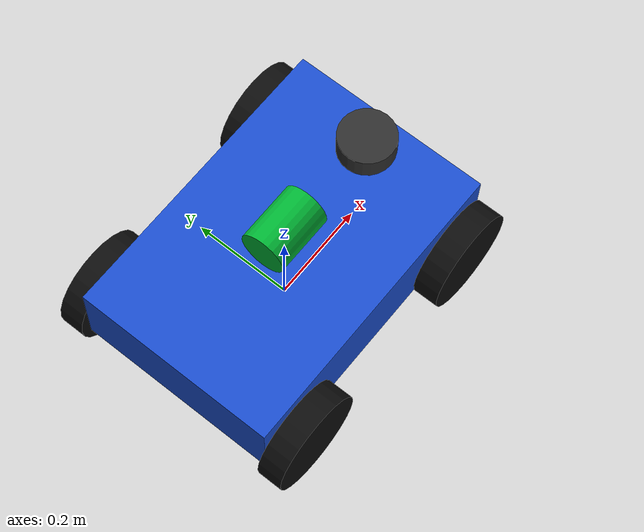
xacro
<?xml version="1.0"?>
<robot xmlns:xacro="http://www.ros.org/wiki/xacro" name="robot_model">

  <!-- ────────────────────────────────────────────────────────────────
       DIMENSIONS
  ──────────────────────────────────────────────────────────────────── -->
  <xacro:property name="base_length"     value="0.60"/>
  <xacro:property name="base_width"      value="0.40"/>
  <xacro:property name="base_height"     value="0.15"/>
  <xacro:property name="base_z"          value="0.15"/>

  <xacro:property name="wheel_radius"    value="0.10"/>
  <xacro:property name="wheel_width"     value="0.05"/>
  <xacro:property name="wheel_x_offset"  value="0.22"/>
  <xacro:property name="wheel_y_offset"  value="0.225"/>
  <xacro:property name="wheel_z"         value="0.10"/>

  <xacro:property name="sensor_base_z"   value="${base_z + base_height / 2.0}"/>

  <xacro:property name="lidar_radius"    value="0.055"/>
  <xacro:property name="lidar_height"    value="0.045"/>
  <xacro:property name="lidar_x"         value="${base_length / 2.0 - 0.07}"/>
  <xacro:property name="lidar_z"         value="${sensor_base_z + lidar_height / 2.0}"/>

  <xacro:property name="camera_radius"   value="0.045"/>
  <xacro:property name="camera_length"   value="0.12"/>
  <xacro:property name="camera_z"        value="${sensor_base_z + camera_radius}"/>

  <!-- ────────────────────────────────────────────────────────────────
       MASS PROPERTIES
  ──────────────────────────────────────────────────────────────────── -->
  <xacro:property name="base_mass"       value="12.0"/>
  <xacro:property name="wheel_mass"      value="1.0"/>
  <xacro:property name="lidar_mass"      value="0.25"/>
  <xacro:property name="camera_mass"     value="0.20"/>

  <!-- ────────────────────────────────────────────────────────────────
       MATERIALS  (URDF / RViz)
  ──────────────────────────────────────────────────────────────────── -->
  <material name="blue">
    <color rgba="0.1 0.3 0.8 1.0"/>
  </material>
  <material name="black">
    <color rgba="0.05 0.05 0.05 1.0"/>
  </material>
  <material name="dark_gray">
    <color rgba="0.18 0.18 0.18 1.0"/>
  </material>
  <material name="green">
    <color rgba="0.0 0.7 0.2 1.0"/>
  </material>

  <gazebo reference="base_link">
    <material>
      <ambient>0.1 0.3 0.8 1</ambient>
      <diffuse>0.1 0.3 0.8 1</diffuse>
      <specular>0.1 0.1 0.1 1</specular>
    </material>
  </gazebo>

  <gazebo reference="front_left_wheel_link">
    <material>
      <ambient>0.05 0.05 0.05 1</ambient>
      <diffuse>0.05 0.05 0.05 1</diffuse>
    </material>
  </gazebo>
  <gazebo reference="front_right_wheel_link">
    <material>
      <ambient>0.05 0.05 0.05 1</ambient>
      <diffuse>0.05 0.05 0.05 1</diffuse>
    </material>
  </gazebo>
  <gazebo reference="rear_left_wheel_link">
    <material>
      <ambient>0.05 0.05 0.05 1</ambient>
      <diffuse>0.05 0.05 0.05 1</diffuse>
    </material>
  </gazebo>
  <gazebo reference="rear_right_wheel_link">
    <material>
      <ambient>0.05 0.05 0.05 1</ambient>
      <diffuse>0.05 0.05 0.05 1</diffuse>
    </material>
  </gazebo>

  <!-- ────────────────────────────────────────────────────────────────
       BASE FOOTPRINT
  ──────────────────────────────────────────────────────────────────── -->
  <link name="base_footprint"/>

  <joint name="base_footprint_joint" type="fixed">
    <parent link="base_footprint"/>
    <child  link="base_link"/>
    <origin xyz="0 0 0" rpy="0 0 0"/>
  </joint>

  <!-- ────────────────────────────────────────────────────────────────
       BASE LINK
  ──────────────────────────────────────────────────────────────────── -->
  <link name="base_link">
    <visual>
      <origin xyz="0 0 ${base_z}" rpy="0 0 0"/>
      <geometry>
        <box size="${base_length} ${base_width} ${base_height}"/>
      </geometry>
      <material name="blue"/>
    </visual>
    <collision>
      <origin xyz="0 0 ${base_z}" rpy="0 0 0"/>
      <geometry>
        <box size="${base_length} ${base_width} ${base_height}"/>
      </geometry>
    </collision>
    <inertial>
      <origin xyz="0 0 ${base_z}" rpy="0 0 0"/>
      <mass value="${base_mass}"/>
      <inertia
        ixx="${(base_mass/12.0)*(base_width*base_width  + base_height*base_height)}"
        ixy="0" ixz="0"
        iyy="${(base_mass/12.0)*(base_length*base_length + base_height*base_height)}"
        iyz="0"
        izz="${(base_mass/12.0)*(base_length*base_length + base_width*base_width)}"/>
    </inertial>
  </link>

  <!-- ────────────────────────────────────────────────────────────────
       WHEEL MACRO
  ──────────────────────────────────────────────────────────────────── -->
  <xacro:macro name="wheel" params="prefix x y">
    <link name="${prefix}_wheel_link">
      <visual>
        <origin xyz="0 0 0" rpy="${pi/2.0} 0 0"/>
        <geometry>
          <cylinder radius="${wheel_radius}" length="${wheel_width}"/>
        </geometry>
        <material name="black"/>
      </visual>
      <collision>
        <origin xyz="0 0 0" rpy="${pi/2.0} 0 0"/>
        <geometry>
          <cylinder radius="${wheel_radius}" length="${wheel_width}"/>
        </geometry>
        <!-- Gz Harmonic: improve wheel-ground contact -->
        <surface>
          <friction>
            <ode>
              <mu>1.0</mu>
              <mu2>1.0</mu2>
            </ode>
          </friction>
        </surface>
      </collision>
      <inertial>
        <mass value="${wheel_mass}"/>
        <inertia
          ixx="${(wheel_mass/12.0)*(3.0*wheel_radius*wheel_radius + wheel_width*wheel_width)}"
          ixy="0" ixz="0"
          iyy="${0.5*wheel_mass*wheel_radius*wheel_radius}"
          iyz="0"
          izz="${(wheel_mass/12.0)*(3.0*wheel_radius*wheel_radius + wheel_width*wheel_width)}"/>
      </inertial>
    </link>

    <joint name="${prefix}_wheel_joint" type="continuous">
      <parent link="base_link"/>
      <child  link="${prefix}_wheel_link"/>
      <origin xyz="${x} ${y} ${wheel_z}" rpy="0 0 0"/>
      <axis xyz="0 1 0"/>
      <dynamics damping="0.1" friction="0.1"/>
    </joint>
  </xacro:macro>

  <!-- Four-wheel placement -->
  <xacro:wheel prefix="front_left"  x="${wheel_x_offset}"  y="${wheel_y_offset}"/>
  <xacro:wheel prefix="front_right" x="${wheel_x_offset}"  y="${-wheel_y_offset}"/>
  <xacro:wheel prefix="rear_left"   x="${-wheel_x_offset}" y="${wheel_y_offset}"/>
  <xacro:wheel prefix="rear_right"  x="${-wheel_x_offset}" y="${-wheel_y_offset}"/>

  <!-- ────────────────────────────────────────────────────────────────
       LIDAR LINK + JOINT
  ──────────────────────────────────────────────────────────────────── -->
  <link name="lidar_link">
    <visual>
      <origin xyz="0 0 0" rpy="0 0 0"/>
      <geometry>
        <cylinder radius="${lidar_radius}" length="${lidar_height}"/>
      </geometry>
      <material name="dark_gray"/>
    </visual>
    <collision>
      <origin xyz="0 0 0" rpy="0 0 0"/>
      <geometry>
        <cylinder radius="${lidar_radius}" length="${lidar_height}"/>
      </geometry>
    </collision>
    <inertial>
      <mass value="${lidar_mass}"/>
      <inertia
        ixx="${(lidar_mass/12.0)*(3.0*lidar_radius*lidar_radius + lidar_height*lidar_height)}"
        ixy="0" ixz="0"
        iyy="${(lidar_mass/12.0)*(3.0*lidar_radius*lidar_radius + lidar_height*lidar_height)}"
        iyz="0"
        izz="${0.5*lidar_mass*lidar_radius*lidar_radius}"/>
    </inertial>
  </link>

  <joint name="lidar_joint" type="fixed">
    <parent link="base_link"/>
    <child  link="lidar_link"/>
    <origin xyz="${lidar_x} 0 ${lidar_z}" rpy="0 0 0"/>
  </joint>

  <gazebo reference="lidar_link">
  <sensor name="front_lidar" type="lidar">
    <always_on>true</always_on>
    <visualize>true</visualize>
    <update_rate>20</update_rate>
    <topic>/scan</topic>

    <lidar>
      <scan>
        <horizontal>
          <samples>1080</samples>
          <resolution>1</resolution>
          <min_angle>-3.14159</min_angle>
          <max_angle>3.14159</max_angle>
        </horizontal>
      </scan>

      <range>
        <min>0.12</min>
        <max>20.0</max>
        <resolution>0.01</resolution>
      </range>

      <noise>
        <type>gaussian</type>
        <mean>0.0</mean>
        <stddev>0.01</stddev>
      </noise>
    </lidar>
  </sensor>
</gazebo>

  <!-- ────────────────────────────────────────────────────────────────
       IMU LINK + JOINT
  ──────────────────────────────────────────────────────────────────── -->
  <link name="imu_link">
    <inertial>
      <mass value="0.05"/>
      <origin xyz="0 0 0"/>
      <inertia
        ixx="0.0001" ixy="0" ixz="0"
        iyy="0.0001" iyz="0"
        izz="0.0001"/>
    </inertial>
  </link>

  <joint name="imu_joint" type="fixed">
    <parent link="base_link"/>
    <child  link="imu_link"/>
    <origin xyz="0 0 ${sensor_base_z}" rpy="0 0 0"/>
  </joint>

  <gazebo reference="imu_link">
    <sensor name="imu_sensor" type="imu">
      <always_on>true</always_on>
      <update_rate>100</update_rate>
      <topic>/imu</topic>

      <imu>
        <angular_velocity>
          <x><noise type="gaussian"><mean>0.0</mean><stddev>0.009</stddev></noise></x>
          <y><noise type="gaussian"><mean>0.0</mean><stddev>0.009</stddev></noise></y>
          <z><noise type="gaussian"><mean>0.0</mean><stddev>0.009</stddev></noise></z>
        </angular_velocity>
        <linear_acceleration>
          <x><noise type="gaussian"><mean>0.0</mean><stddev>0.021</stddev></noise></x>
          <y><noise type="gaussian"><mean>0.0</mean><stddev>0.021</stddev></noise></y>
          <z><noise type="gaussian"><mean>0.0</mean><stddev>0.021</stddev></noise></z>
        </linear_acceleration>
      </imu>
    </sensor>
  </gazebo>

  <!-- ────────────────────────────────────────────────────────────────
       CAMERA LINK + JOINTS
  ──────────────────────────────────────────────────────────────────── -->
  <link name="camera_link">
    <visual>
      <origin xyz="0 0 0" rpy="0 ${pi/2.0} 0"/>
      <geometry>
        <cylinder radius="${camera_radius}" length="${camera_length}"/>
      </geometry>
      <material name="green"/>
    </visual>
    <collision>
      <origin xyz="0 0 0" rpy="0 ${pi/2.0} 0"/>
      <geometry>
        <cylinder radius="${camera_radius}" length="${camera_length}"/>
      </geometry>
    </collision>
    <inertial>
      <mass value="${camera_mass}"/>
      <inertia
        ixx="${0.5*camera_mass*camera_radius*camera_radius}"
        ixy="0" ixz="0"
        iyy="${(camera_mass/12.0)*(3.0*camera_radius*camera_radius + camera_length*camera_length)}"
        iyz="0"
        izz="${(camera_mass/12.0)*(3.0*camera_radius*camera_radius + camera_length*camera_length)}"/>
    </inertial>
  </link>

  <joint name="camera_joint" type="fixed">
    <parent link="base_link"/>
    <child  link="camera_link"/>
    <origin xyz="0 0 ${camera_z}" rpy="0 0 0"/>
  </joint>

  <!-- Optical frame: Z-forward convention for image pipelines -->
  <link name="camera_optical_link"/>
  <joint name="camera_optical_joint" type="fixed">
    <parent link="camera_link"/>
    <child  link="camera_optical_link"/>
    <origin xyz="${camera_length/2.0} 0 0" rpy="${-pi/2.0} 0 ${-pi/2.0}"/>
  </joint>

  <gazebo reference="camera_link">
    <sensor name="front_camera" type="camera">
      <always_on>true</always_on>
      <visualize>true</visualize>
      <update_rate>30</update_rate>
      <topic>/camera/image_raw</topic>

      <camera>
        <horizontal_fov>1.047</horizontal_fov>
        <image>
          <width>640</width>
          <height>480</height>
          <format>R8G8B8</format>
        </image>
        <clip>
          <near>0.05</near>
          <far>20.0</far>
        </clip>
        <noise>
          <type>gaussian</type>
          <mean>0.0</mean>
          <stddev>0.007</stddev>
        </noise>
      </camera>
    </sensor>
  </gazebo>

  <gazebo>
    <!-- Differential drive controller -->
    <plugin
      filename="gz-sim-diff-drive-system"
      name="gz::sim::systems::DiffDrive">
      <left_joint>rear_left_wheel_joint</left_joint>
      <left_joint>front_left_wheel_joint</left_joint>
      <right_joint>rear_right_wheel_joint</right_joint>
      <right_joint>front_right_wheel_joint</right_joint>
      <wheel_separation>${wheel_y_offset * 2.0}</wheel_separation>
      <wheel_radius>${wheel_radius}</wheel_radius>
      <odom_publish_frequency>50</odom_publish_frequency>
      <topic>/cmd_vel</topic>
      <odom_topic>/odom</odom_topic>
      <frame_id>odom</frame_id>
      <child_frame_id>base_footprint</child_frame_id>
      <max_linear_acceleration>3.0</max_linear_acceleration>
    </plugin>

    <!-- Joint state publisher -->
    <plugin
      filename="gz-sim-joint-state-publisher-system"
      name="gz::sim::systems::JointStatePublisher">
      <topic>/joint_states</topic>
      <joint_name>front_left_wheel_joint</joint_name>
      <joint_name>front_right_wheel_joint</joint_name>
      <joint_name>rear_left_wheel_joint</joint_name>
      <joint_name>rear_right_wheel_joint</joint_name>
    </plugin>

    <!-- Odometry (TF broadcaster: odom → base_footprint) -->
    <plugin
      filename="gz-sim-odometry-publisher-system"
      name="gz::sim::systems::OdometryPublisher">
      <odom_topic>/odom</odom_topic>
      <odom_frame>odom</odom_frame>
      <robot_base_frame>base_footprint</robot_base_frame>
      <publish_tf>true</publish_tf>
    </plugin>
  </gazebo>

</robot>
